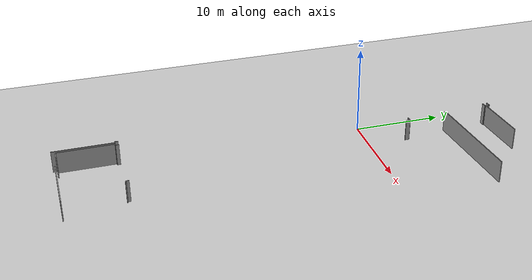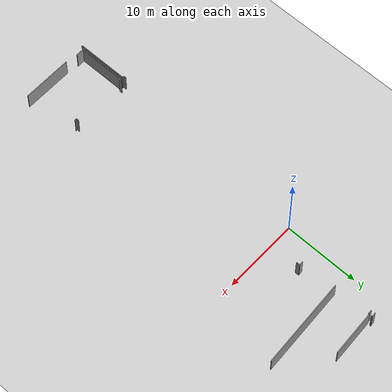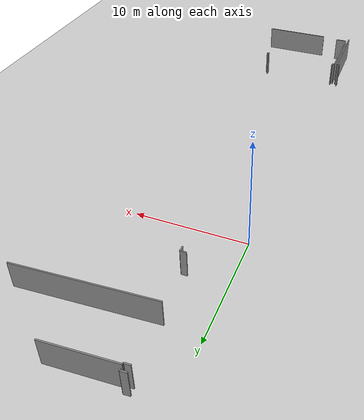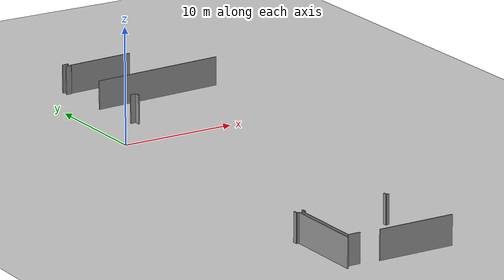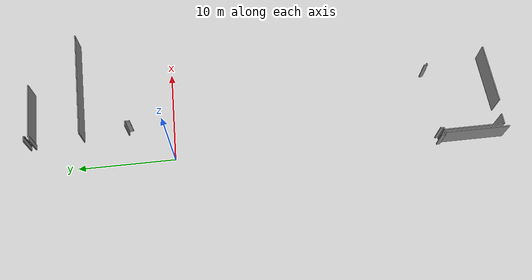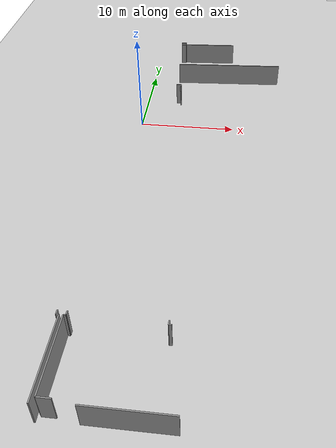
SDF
<sdf version="1.6">
 <world name="default">
  <model name="ground_plane">
   <static>1</static>
   <link name="link">
    <collision name="collision">
     <geometry><plane><normal>0 0 1</normal><size>100 100</size></plane></geometry>
     <surface><friction><ode><mu>100</mu><mu2>50</mu2></ode></friction></surface>
    </collision>
    <visual name="visual">
     <cast_shadows>0</cast_shadows>
     <geometry><plane><normal>0 0 1</normal><size>100 100</size></plane></geometry>
     <material>
      <script><uri>file://media/materials/scripts/gazebo.material</uri><name>Gazebo/Grey</name></script>
     </material>
    </visual>
   </link>
  </model>
  <model name="50025632">
   <static>1</static>
   <link name="Wall_69">
    <collision name="Wall_69_Collision">
     <geometry><box><size>0.13806067303 0.1 2.5</size></box></geometry>
     <pose>0.069030336515 0 1.25 0 0 0</pose>
    </collision>
    <visual name="Wall_69_Visual">
     <pose>0.069030336515 0 1.25 0 0 0</pose>
     <geometry><box><size>0.13806067303 0.1 2.5</size></box></geometry>
     <material>
      <script><uri>file://media/materials/scripts/gazebo.material</uri><name>Gazebo/Grey</name></script>
      <ambient>1 1 1 1</ambient>
     </material>
    </visual>
    <pose>53.3166949266 -33.5526681781 0 0 0 1.57079632679</pose>
   </link>
   <link name="Wall_70">
    <collision name="Wall_70_Collision">
     <geometry><box><size>0.532583712992 0.1 2.5</size></box></geometry>
     <pose>0.266291856496 0 1.25 0 0 0</pose>
    </collision>
    <visual name="Wall_70_Visual">
     <pose>0.266291856496 0 1.25 0 0 0</pose>
     <geometry><box><size>0.532583712992 0.1 2.5</size></box></geometry>
     <material>
      <script><uri>file://media/materials/scripts/gazebo.material</uri><name>Gazebo/Grey</name></script>
      <ambient>1 1 1 1</ambient>
     </material>
    </visual>
    <pose>53.3166949266 -33.4146075051 0 0 0 -3.04581567837</pose>
   </link>
   <link name="Wall_85">
    <collision name="Wall_85_Collision">
     <geometry><box><size>0.510054158264 0.1 2.5</size></box></geometry>
     <pose>0.255027079132 0 1.25 0 0 0</pose>
    </collision>
    <visual name="Wall_85_Visual">
     <pose>0.255027079132 0 1.25 0 0 0</pose>
     <geometry><box><size>0.510054158264 0.1 2.5</size></box></geometry>
     <material>
      <script><uri>file://media/materials/scripts/gazebo.material</uri><name>Gazebo/Grey</name></script>
      <ambient>1 1 1 1</ambient>
     </material>
    </visual>
    <pose>52.828338636 -33.9879339798 0 0 0 0.0490754980566</pose>
   </link>
   <link name="Wall_86">
    <collision name="Wall_86_Collision">
     <geometry><box><size>0.108907542601 0.1 2.5</size></box></geometry>
     <pose>0.0544537713006 0 1.25 0 0 0</pose>
    </collision>
    <visual name="Wall_86_Visual">
     <pose>0.0544537713006 0 1.25 0 0 0</pose>
     <geometry><box><size>0.108907542601 0.1 2.5</size></box></geometry>
     <material>
      <script><uri>file://media/materials/scripts/gazebo.material</uri><name>Gazebo/Grey</name></script>
      <ambient>1 1 1 1</ambient>
     </material>
    </visual>
    <pose>53.3377787092 -33.9629128643 0 0 0 1.49491888967</pose>
   </link>
   <link name="Wall_87">
    <collision name="Wall_87_Collision">
     <geometry><box><size>5.99003257961 0.1 2.5</size></box></geometry>
     <pose>2.9950162898 0 1.25 0 0 0</pose>
    </collision>
    <visual name="Wall_87_Visual">
     <pose>2.9950162898 0 1.25 0 0 0</pose>
     <geometry><box><size>5.99003257961 0.1 2.5</size></box></geometry>
     <material>
      <script><uri>file://media/materials/scripts/gazebo.material</uri><name>Gazebo/Grey</name></script>
      <ambient>1 1 1 1</ambient>
     </material>
    </visual>
    <pose>53.3460344072 -33.8543186826 0 0 0 0.0633565684644</pose>
   </link>
   <link name="Wall_116">
    <collision name="Wall_116_Collision">
     <geometry><box><size>0.480324606674 0.1 2.5</size></box></geometry>
     <pose>0.240162303337 0 1.25 0 0 0</pose>
    </collision>
    <visual name="Wall_116_Visual">
     <pose>0.240162303337 0 1.25 0 0 0</pose>
     <geometry><box><size>0.480324606674 0.1 2.5</size></box></geometry>
     <material>
      <script><uri>file://media/materials/scripts/gazebo.material</uri><name>Gazebo/Grey</name></script>
      <ambient>1 1 1 1</ambient>
     </material>
    </visual>
    <pose>53.9436199331 -44.1584458966 0 0 0 1.59089412289</pose>
   </link>
   <link name="Wall_117">
    <collision name="Wall_117_Collision">
     <geometry><box><size>0.518674676191 0.1 2.5</size></box></geometry>
     <pose>0.259337338096 0 1.25 0 0 0</pose>
    </collision>
    <visual name="Wall_117_Visual">
     <pose>0.259337338096 0 1.25 0 0 0</pose>
     <geometry><box><size>0.518674676191 0.1 2.5</size></box></geometry>
     <material>
      <script><uri>file://media/materials/scripts/gazebo.material</uri><name>Gazebo/Grey</name></script>
      <ambient>1 1 1 1</ambient>
     </material>
    </visual>
    <pose>53.9339671169 -43.6782182934 0 0 0 -3.12298103847</pose>
   </link>
   <link name="Wall_118">
    <collision name="Wall_118_Collision">
     <geometry><box><size>11.9153471783 0.1 2.5</size></box></geometry>
     <pose>5.95767358917 0 1.25 0 0 0</pose>
    </collision>
    <visual name="Wall_118_Visual">
     <pose>5.95767358917 0 1.25 0 0 0</pose>
     <geometry><box><size>11.9153471783 0.1 2.5</size></box></geometry>
     <material>
      <script><uri>file://media/materials/scripts/gazebo.material</uri><name>Gazebo/Grey</name></script>
      <ambient>1 1 1 1</ambient>
     </material>
    </visual>
    <pose>53.1456114614 -38.9903789365 0 0 0 0.0624194749126</pose>
   </link>
   <link name="Wall_400">
    <collision name="Wall_400_Collision">
     <geometry><box><size>6.59287342745 0.1 2.5</size></box></geometry>
     <pose>3.29643671372 0 1.25 0 0 0</pose>
    </collision>
    <visual name="Wall_400_Visual">
     <pose>3.29643671372 0 1.25 0 0 0</pose>
     <geometry><box><size>6.59287342745 0.1 2.5</size></box></geometry>
     <material>
      <script><uri>file://media/materials/scripts/gazebo.material</uri><name>Gazebo/Grey</name></script>
      <ambient>1 1 1 1</ambient>
     </material>
    </visual>
    <pose>52.164707526 -82.6865184451 0 0 0 0.0</pose>
   </link>
   <link name="Wall_427">
    <collision name="Wall_427_Collision">
     <geometry><box><size>1.07730508615 0.1 2.5</size></box></geometry>
     <pose>0.538652543073 0 1.25 0 0 0</pose>
    </collision>
    <visual name="Wall_427_Visual">
     <pose>0.538652543073 0 1.25 0 0 0</pose>
     <geometry><box><size>1.07730508615 0.1 2.5</size></box></geometry>
     <material>
      <script><uri>file://media/materials/scripts/gazebo.material</uri><name>Gazebo/Grey</name></script>
      <ambient>1 1 1 1</ambient>
     </material>
    </visual>
    <pose>50.5484958753 -82.4393555475 0 0 0 3.14159265359</pose>
   </link>
   <link name="Wall_428">
    <collision name="Wall_428_Collision">
     <geometry><box><size>6.30455905047 0.1 2.5</size></box></geometry>
     <pose>3.15227952523 0 1.25 0 0 0</pose>
    </collision>
    <visual name="Wall_428_Visual">
     <pose>3.15227952523 0 1.25 0 0 0</pose>
     <geometry><box><size>6.30455905047 0.1 2.5</size></box></geometry>
     <material>
      <script><uri>file://media/materials/scripts/gazebo.material</uri><name>Gazebo/Grey</name></script>
      <ambient>1 1 1 1</ambient>
     </material>
    </visual>
    <pose>49.4711907892 -82.4393555475 0 0 0 1.57079632679</pose>
   </link>
   <link name="Wall_429">
    <collision name="Wall_429_Collision">
     <geometry><box><size>0.216172277366 0.1 2.5</size></box></geometry>
     <pose>0.108086138683 0 1.25 0 0 0</pose>
    </collision>
    <visual name="Wall_429_Visual">
     <pose>0.108086138683 0 1.25 0 0 0</pose>
     <geometry><box><size>0.216172277366 0.1 2.5</size></box></geometry>
     <material>
      <script><uri>file://media/materials/scripts/gazebo.material</uri><name>Gazebo/Grey</name></script>
      <ambient>1 1 1 1</ambient>
     </material>
    </visual>
    <pose>49.4711907892 -76.134796497 0 0 0 0.0</pose>
   </link>
   <link name="Wall_430">
    <collision name="Wall_430_Collision">
     <geometry><box><size>0.362361637676 0.1 2.5</size></box></geometry>
     <pose>0.181180818838 0 1.25 0 0 0</pose>
    </collision>
    <visual name="Wall_430_Visual">
     <pose>0.181180818838 0 1.25 0 0 0</pose>
     <geometry><box><size>0.362361637676 0.1 2.5</size></box></geometry>
     <material>
      <script><uri>file://media/materials/scripts/gazebo.material</uri><name>Gazebo/Grey</name></script>
      <ambient>1 1 1 1</ambient>
     </material>
    </visual>
    <pose>49.6873630665 -76.134796497 0 0 0 1.57079632679</pose>
   </link>
   <link name="Wall_431">
    <collision name="Wall_431_Collision">
     <geometry><box><size>0.362361637676 0.1 2.5</size></box></geometry>
     <pose>0.181180818838 0 1.25 0 0 0</pose>
    </collision>
    <visual name="Wall_431_Visual">
     <pose>0.181180818838 0 1.25 0 0 0</pose>
     <geometry><box><size>0.362361637676 0.1 2.5</size></box></geometry>
     <material>
      <script><uri>file://media/materials/scripts/gazebo.material</uri><name>Gazebo/Grey</name></script>
      <ambient>1 1 1 1</ambient>
     </material>
    </visual>
    <pose>57.127652143 -75.7724348594 0 0 0 -1.57079632679</pose>
   </link>
   <link name="Wall_432">
    <collision name="Wall_432_Collision">
     <geometry><box><size>0.230651501584 0.1 2.5</size></box></geometry>
     <pose>0.115325750792 0 1.25 0 0 0</pose>
    </collision>
    <visual name="Wall_432_Visual">
     <pose>0.115325750792 0 1.25 0 0 0</pose>
     <geometry><box><size>0.230651501584 0.1 2.5</size></box></geometry>
     <material>
      <script><uri>file://media/materials/scripts/gazebo.material</uri><name>Gazebo/Grey</name></script>
      <ambient>1 1 1 1</ambient>
     </material>
    </visual>
    <pose>57.127652143 -76.134796497 0 0 0 0.0</pose>
   </link>
   <link name="Wall_438">
    <collision name="Wall_438_Collision">
     <geometry><box><size>0.392082150546 0.1 2.5</size></box></geometry>
     <pose>0.196041075273 0 1.25 0 0 0</pose>
    </collision>
    <visual name="Wall_438_Visual">
     <pose>0.196041075273 0 1.25 0 0 0</pose>
     <geometry><box><size>0.392082150546 0.1 2.5</size></box></geometry>
     <material>
      <script><uri>file://media/materials/scripts/gazebo.material</uri><name>Gazebo/Grey</name></script>
      <ambient>1 1 1 1</ambient>
     </material>
    </visual>
    <pose>48.9449852985 -75.7587176996 0 0 0 -1.57079632679</pose>
   </link>
   <link name="Wall_439">
    <collision name="Wall_439_Collision">
     <geometry><box><size>0.21782341697 0.1 2.5</size></box></geometry>
     <pose>0.108911708485 0 1.25 0 0 0</pose>
    </collision>
    <visual name="Wall_439_Visual">
     <pose>0.108911708485 0 1.25 0 0 0</pose>
     <geometry><box><size>0.21782341697 0.1 2.5</size></box></geometry>
     <material>
      <script><uri>file://media/materials/scripts/gazebo.material</uri><name>Gazebo/Grey</name></script>
      <ambient>1 1 1 1</ambient>
     </material>
    </visual>
    <pose>48.9449852985 -76.1507998501 0 0 0 0.0</pose>
   </link>
   <link name="Wall_440">
    <collision name="Wall_440_Collision">
     <geometry><box><size>6.77068846171 0.1 2.5</size></box></geometry>
     <pose>3.38534423085 0 1.25 0 0 0</pose>
    </collision>
    <visual name="Wall_440_Visual">
     <pose>3.38534423085 0 1.25 0 0 0</pose>
     <geometry><box><size>6.77068846171 0.1 2.5</size></box></geometry>
     <material>
      <script><uri>file://media/materials/scripts/gazebo.material</uri><name>Gazebo/Grey</name></script>
      <ambient>1 1 1 1</ambient>
     </material>
    </visual>
    <pose>49.1628087155 -76.1507998501 0 0 0 -1.57079632679</pose>
   </link>
   <pose>-50.15 48.4557939124 0 0 0 0</pose>
  </model>
 </world>
</sdf>
